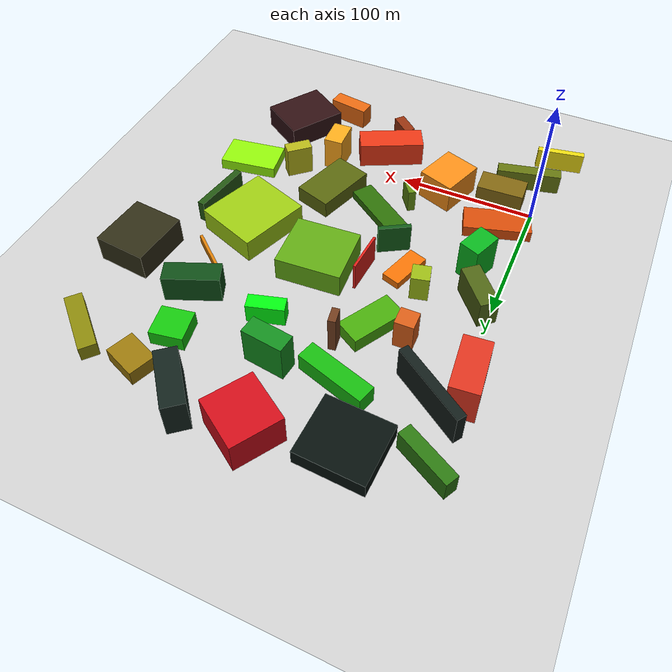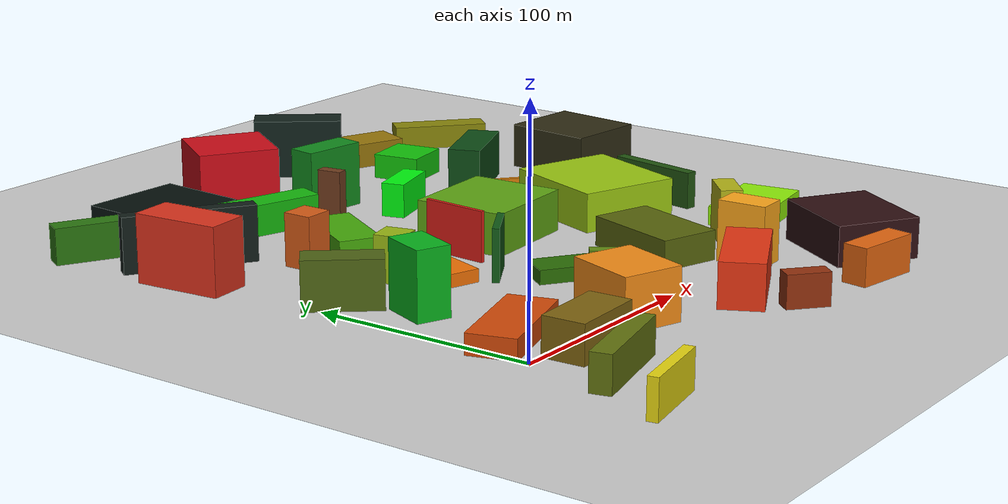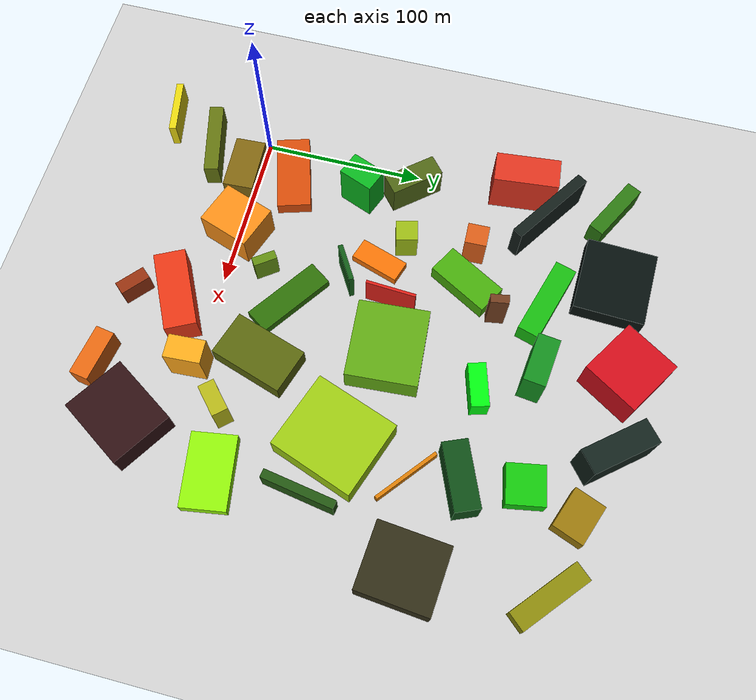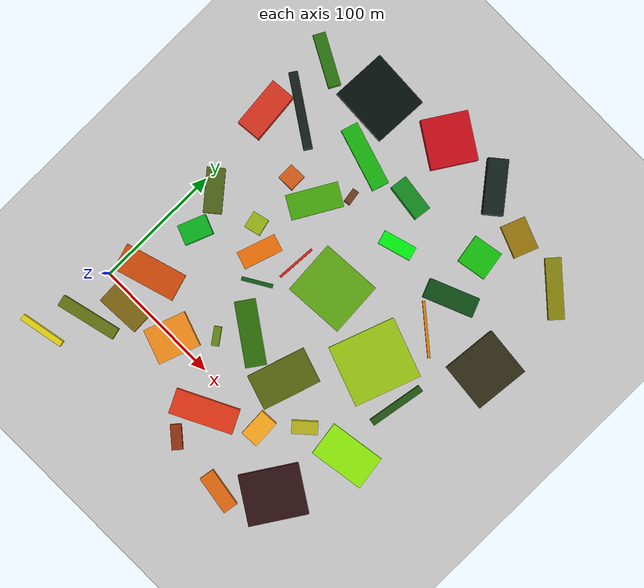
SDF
<sdf version="1.6">
 <world name="default">
  <model name="ground_plane">
   <static>1</static>
   <link name="link">
    <collision name="collision">
     <geometry><plane><normal>0 0 1</normal><size>1090 1090</size></plane></geometry>
     <surface>
      <contact><collide_bitmask>65535</collide_bitmask></contact>
      <friction><ode><mu>100</mu><mu2>50</mu2></ode></friction>
     </surface>
     <max_contacts>100</max_contacts>
    </collision>
    <visual name="visual">
     <cast_shadows>0</cast_shadows>
     <geometry><plane><normal>0 0 1</normal><size>1090 1090</size></plane></geometry>
     <material>
      <script><uri>file://media/materials/scripts/gazebo.material</uri><name>Gazebo/Grey</name></script>
     </material>
    </visual>
   </link>
  </model>
  <model name="box_0">
   <pose>11.0 98.0 10.67856067899134 0.0 0.0 -0.8694971052716423</pose>
   <link name="link">
    <inertial>
     <mass>1</mass>
     <inertia><ixx>1.0</ixx><ixy>0</ixy><ixz>0</ixz><iyy>1.0</iyy><iyz>0</iyz><izz>1.0</izz></inertia>
    </inertial>
    <collision name="collision">
     <geometry><box><size>33.5071474526018 13.437500068040059 21.35712135798268</size></box></geometry>
     <max_contacts>100</max_contacts>
    </collision>
    <visual name="visual">
     <geometry><box><size>33.5071474526018 13.437500068040059 21.35712135798268</size></box></geometry>
     <material>
      <ambient>0.3059676274096351 0.3932885663509397 0.08375341709012817 1</ambient>
      <diffuse>0.3059676274096351 0.3932885663509397 0.08375341709012817 1</diffuse>
     </material>
    </visual>
   </link>
  </model>
  <model name="box_3">
   <pose>200.0 -28.0 9.022767748040945 0.0 0.0 0.9989461405889835</pose>
   <link name="link">
    <inertial>
     <mass>1</mass>
     <inertia><ixx>1.0</ixx><ixy>0</ixy><ixz>0</ixz><iyy>1.0</iyy><iyz>0</iyz><izz>1.0</izz></inertia>
    </inertial>
    <collision name="collision">
     <geometry><box><size>45.36900019797469 38.38082626452342 18.04553549608189</size></box></geometry>
     <max_contacts>100</max_contacts>
    </collision>
    <visual name="visual">
     <geometry><box><size>45.36900019797469 38.38082626452342 18.04553549608189</size></box></geometry>
     <material>
      <ambient>0.18105585911303934 0.06124740286496 0.0707668058669878 1</ambient>
      <diffuse>0.18105585911303934 0.06124740286496 0.0707668058669878 1</diffuse>
     </material>
    </visual>
   </link>
  </model>
  <model name="box_10">
   <pose>218.0 30.0 4.36076915369778 0.0 0.0 1.7217781965595014</pose>
   <link name="link">
    <inertial>
     <mass>1</mass>
     <inertia><ixx>1.0</ixx><ixy>0</ixy><ixz>0</ixz><iyy>1.0</iyy><iyz>0</iyz><izz>1.0</izz></inertia>
    </inertial>
    <collision name="collision">
     <geometry><box><size>26.88339719535763 43.408110691959145 8.72153830739556</size></box></geometry>
     <max_contacts>100</max_contacts>
    </collision>
    <visual name="visual">
     <geometry><box><size>26.88339719535763 43.408110691959145 8.72153830739556</size></box></geometry>
     <material>
      <ambient>0.5631429183391052 0.9368762787943058 0.034202111009394354 1</ambient>
      <diffuse>0.5631429183391052 0.9368762787943058 0.034202111009394354 1</diffuse>
     </material>
    </visual>
   </link>
  </model>
  <model name="box_12">
   <pose>244.0 147.0 10.400552500799233 0.0 0.0 3.0447985492003213</pose>
   <link name="link">
    <inertial>
     <mass>1</mass>
     <inertia><ixx>1.0</ixx><ixy>0</ixy><ixz>0</ixz><iyy>1.0</iyy><iyz>0</iyz><izz>1.0</izz></inertia>
    </inertial>
    <collision name="collision">
     <geometry><box><size>38.614115217144985 42.638338753852224 20.801105001598465</size></box></geometry>
     <max_contacts>100</max_contacts>
    </collision>
    <visual name="visual">
     <geometry><box><size>38.614115217144985 42.638338753852224 20.801105001598465</size></box></geometry>
     <material>
      <ambient>0.18408507084050296 0.17183968187200183 0.08157296079058221 1</ambient>
      <diffuse>0.18408507084050296 0.17183968187200183 0.08157296079058221 1</diffuse>
     </material>
    </visual>
   </link>
  </model>
  <model name="box_16">
   <pose>12.0 -33.0 7.8999495172870144 0.0 0.0 -2.9074084649632392</pose>
   <link name="link">
    <inertial>
     <mass>1</mass>
     <inertia><ixx>1.0</ixx><ixy>0</ixy><ixz>0</ixz><iyy>1.0</iyy><iyz>0</iyz><izz>1.0</izz></inertia>
    </inertial>
    <collision name="collision">
     <geometry><box><size>47.22595043230734 8.998547996909277 15.799899034574029</size></box></geometry>
     <max_contacts>100</max_contacts>
    </collision>
    <visual name="visual">
     <geometry><box><size>47.22595043230734 8.998547996909277 15.799899034574029</size></box></geometry>
     <material>
      <ambient>0.386585925612677 0.4516583894784828 0.06196038837087854 1</ambient>
      <diffuse>0.386585925612677 0.4516583894784828 0.06196038837087854 1</diffuse>
     </material>
    </visual>
   </link>
  </model>
  <model name="box_17">
   <pose>20.0 22.0 4.452574775439398 0.0 0.0 0.2918054289695745</pose>
   <link name="link">
    <inertial>
     <mass>1</mass>
     <inertia><ixx>1.0</ixx><ixy>0</ixy><ixz>0</ixz><iyy>1.0</iyy><iyz>0</iyz><izz>1.0</izz></inertia>
    </inertial>
    <collision name="collision">
     <geometry><box><size>49.000109454054865 21.082333981721092 8.905149550878797</size></box></geometry>
     <max_contacts>100</max_contacts>
    </collision>
    <visual name="visual">
     <geometry><box><size>49.000109454054865 21.082333981721092 8.905149550878797</size></box></geometry>
     <material>
      <ambient>0.8293685395352113 0.29114021774623766 0.034922155101485476 1</ambient>
      <diffuse>0.8293685395352113 0.29114021774623766 0.034922155101485476 1</diffuse>
     </material>
    </visual>
   </link>
  </model>
  <model name="box_20">
   <pose>183.0 93.0 8.946816165260138 0.0 0.0 -0.34660458879755934</pose>
   <link name="link">
    <inertial>
     <mass>1</mass>
     <inertia><ixx>1.0</ixx><ixy>0</ixy><ixz>0</ixz><iyy>1.0</iyy><iyz>0</iyz><izz>1.0</izz></inertia>
    </inertial>
    <collision name="collision">
     <geometry><box><size>47.430815665113364 52.51957210905458 17.893632330520276</size></box></geometry>
     <max_contacts>100</max_contacts>
    </collision>
    <visual name="visual">
     <geometry><box><size>47.430815665113364 52.51957210905458 17.893632330520276</size></box></geometry>
     <material>
      <ambient>0.6064786898915688 0.780767434220349 0.07017110717851088 1</ambient>
      <diffuse>0.6064786898915688 0.780767434220349 0.07017110717851088 1</diffuse>
     </material>
    </visual>
   </link>
  </model>
  <model name="box_21">
   <pose>68.0 145.0 5.506815892541878 0.0 0.0 1.0504982057027636</pose>
   <link name="link">
    <inertial>
     <mass>1</mass>
     <inertia><ixx>1.0</ixx><ixy>0</ixy><ixz>0</ixz><iyy>1.0</iyy><iyz>0</iyz><izz>1.0</izz></inertia>
    </inertial>
    <collision name="collision">
     <geometry><box><size>39.91934967818939 18.945758763937253 11.013631785083756</size></box></geometry>
     <max_contacts>100</max_contacts>
    </collision>
    <visual name="visual">
     <geometry><box><size>39.91934967818939 18.945758763937253 11.013631785083756</size></box></geometry>
     <material>
      <ambient>0.27681154281509324 0.6641535544460366 0.0431907128826814 1</ambient>
      <diffuse>0.27681154281509324 0.6641535544460366 0.0431907128826814 1</diffuse>
     </material>
    </visual>
   </link>
  </model>
  <model name="box_22">
   <pose>106.0 246.0 12.321171566801386 0.0 0.0 -0.5682716648869991</pose>
   <link name="link">
    <inertial>
     <mass>1</mass>
     <inertia><ixx>1.0</ixx><ixy>0</ixy><ixz>0</ixz><iyy>1.0</iyy><iyz>0</iyz><izz>1.0</izz></inertia>
    </inertial>
    <collision name="collision">
     <geometry><box><size>37.347761429379275 35.48738556221239 24.642343133602772</size></box></geometry>
     <max_contacts>100</max_contacts>
    </collision>
    <visual name="visual">
     <geometry><box><size>37.347761429379275 35.48738556221239 24.642343133602772</size></box></geometry>
     <material>
      <ambient>0.8087825948908098 0.04922039290385771 0.09663663973961871 1</ambient>
      <diffuse>0.8087825948908098 0.04922039290385771 0.09663663973961871 1</diffuse>
     </material>
    </visual>
   </link>
  </model>
  <model name="box_29">
   <pose>238.0 225.0 5.6548939288473345 0.0 0.0 2.419468560276357</pose>
   <link name="link">
    <inertial>
     <mass>1</mass>
     <inertia><ixx>1.0</ixx><ixy>0</ixy><ixz>0</ixz><iyy>1.0</iyy><iyz>0</iyz><izz>1.0</izz></inertia>
    </inertial>
    <collision name="collision">
     <geometry><box><size>45.80371317777055 12.001747961715667 11.309787857694669</size></box></geometry>
     <max_contacts>100</max_contacts>
    </collision>
    <visual name="visual">
     <geometry><box><size>45.80371317777055 12.001747961715667 11.309787857694669</size></box></geometry>
     <material>
      <ambient>0.5360395342016109 0.527621868070338 0.04435210924586145 1</ambient>
      <diffuse>0.5360395342016109 0.527621868070338 0.04435210924586145 1</diffuse>
     </material>
    </visual>
   </link>
  </model>
  <model name="box_31">
   <pose>104.0 43.0 3.1533066303083497 0.0 0.0 2.5326309119641586</pose>
   <link name="link">
    <inertial>
     <mass>1</mass>
     <inertia><ixx>1.0</ixx><ixy>0</ixy><ixz>0</ixz><iyy>1.0</iyy><iyz>0</iyz><izz>1.0</izz></inertia>
    </inertial>
    <collision name="collision">
     <geometry><box><size>49.758344329735195 16.0046455354806 6.306613260616699</size></box></geometry>
     <max_contacts>100</max_contacts>
    </collision>
    <visual name="visual">
     <geometry><box><size>49.758344329735195 16.0046455354806 6.306613260616699</size></box></geometry>
     <material>
      <ambient>0.17324673085959463 0.4304662909968965 0.024731816708300783 1</ambient>
      <diffuse>0.17324673085959463 0.4304662909968965 0.024731816708300783 1</diffuse>
     </material>
    </visual>
   </link>
  </model>
  <model name="box_33">
   <pose>22.0 68.0 14.940747189062463 0.0 0.0 2.7642369392400856</pose>
   <link name="link">
    <inertial>
     <mass>1</mass>
     <inertia><ixx>1.0</ixx><ixy>0</ixy><ixz>0</ixz><iyy>1.0</iyy><iyz>0</iyz><izz>1.0</izz></inertia>
    </inertial>
    <collision name="collision">
     <geometry><box><size>15.324194474235277 22.052505184348746 29.881494378124927</size></box></geometry>
     <max_contacts>100</max_contacts>
    </collision>
    <visual name="visual">
     <geometry><box><size>15.324194474235277 22.052505184348746 29.881494378124927</size></box></geometry>
     <material>
      <ambient>0.03579773283249821 0.7024033259504372 0.11718233089460756 1</ambient>
      <diffuse>0.03579773283249821 0.7024033259504372 0.11718233089460756 1</diffuse>
     </material>
    </visual>
   </link>
  </model>
  <model name="box_42">
   <pose>14.0 184.0 12.412598644548913 0.0 0.0 2.5531505267635</pose>
   <link name="link">
    <inertial>
     <mass>1</mass>
     <inertia><ixx>1.0</ixx><ixy>0</ixy><ixz>0</ixz><iyy>1.0</iyy><iyz>0</iyz><izz>1.0</izz></inertia>
    </inertial>
    <collision name="collision">
     <geometry><box><size>57.2920520556023 6.859954326275175 24.825197289097826</size></box></geometry>
     <max_contacts>100</max_contacts>
    </collision>
    <visual name="visual">
     <geometry><box><size>57.2920520556023 6.859954326275175 24.825197289097826</size></box></geometry>
     <material>
      <ambient>0.07058239078120265 0.1146007214804432 0.09735371485920716 1</ambient>
      <diffuse>0.07058239078120265 0.1146007214804432 0.09735371485920716 1</diffuse>
     </material>
    </visual>
   </link>
  </model>
  <model name="box_48">
   <pose>120.0 -49.0 7.240691237536761 0.0 0.0 -0.7103731831897215</pose>
   <link name="link">
    <inertial>
     <mass>1</mass>
     <inertia><ixx>1.0</ixx><ixy>0</ixy><ixz>0</ixz><iyy>1.0</iyy><iyz>0</iyz><izz>1.0</izz></inertia>
    </inertial>
    <collision name="collision">
     <geometry><box><size>18.85390716043674 8.200221011359595 14.481382475073522</size></box></geometry>
     <max_contacts>100</max_contacts>
    </collision>
    <visual name="visual">
     <geometry><box><size>18.85390716043674 8.200221011359595 14.481382475073522</size></box></geometry>
     <material>
      <ambient>0.5756867890137396 0.18945015781231445 0.05678973519636675 1</ambient>
      <diffuse>0.5756867890137396 0.18945015781231445 0.05678973519636675 1</diffuse>
     </material>
    </visual>
   </link>
  </model>
  <model name="box_54">
   <pose>193.0 233.0 5.7998966686686755 0.0 0.0 -1.9395560428594647</pose>
   <link name="link">
    <inertial>
     <mass>1</mass>
     <inertia><ixx>1.0</ixx><ixy>0</ixy><ixz>0</ixz><iyy>1.0</iyy><iyz>0</iyz><izz>1.0</izz></inertia>
    </inertial>
    <collision name="collision">
     <geometry><box><size>19.200888196373857 25.301782714017442 11.599793337337351</size></box></geometry>
     <max_contacts>100</max_contacts>
    </collision>
    <visual name="visual">
     <geometry><box><size>19.200888196373857 25.301782714017442 11.599793337337351</size></box></geometry>
     <material>
      <ambient>0.5960275623261782 0.4654695609762862 0.045489385636617065 1</ambient>
      <diffuse>0.5960275623261782 0.4654695609762862 0.045489385636617065 1</diffuse>
     </material>
    </visual>
   </link>
  </model>
  <model name="box_55">
   <pose>123.0 109.0 9.383912468043714 0.0 0.0 0.06575288888933324</pose>
   <link name="link">
    <inertial>
     <mass>1</mass>
     <inertia><ixx>1.0</ixx><ixy>0</ixy><ixz>0</ixz><iyy>1.0</iyy><iyz>0</iyz><izz>1.0</izz></inertia>
    </inertial>
    <collision name="collision">
     <geometry><box><size>47.223947586904224 42.66392834239757 18.76782493608743</size></box></geometry>
     <max_contacts>100</max_contacts>
    </collision>
    <visual name="visual">
     <geometry><box><size>47.223947586904224 42.66392834239757 18.76782493608743</size></box></geometry>
     <material>
      <ambient>0.3735187204133277 0.6535196936906211 0.07359931347485266 1</ambient>
      <diffuse>0.3735187204133277 0.6535196936906211 0.07359931347485266 1</diffuse>
     </material>
    </visual>
   </link>
  </model>
  <model name="box_58">
   <pose>44.0 145.0 11.76288372965097 0.0 0.0 -1.5490794688722906</pose>
   <link name="link">
    <inertial>
     <mass>1</mass>
     <inertia><ixx>1.0</ixx><ixy>0</ixy><ixz>0</ixz><iyy>1.0</iyy><iyz>0</iyz><izz>1.0</izz></inertia>
    </inertial>
    <collision name="collision">
     <geometry><box><size>13.233263653863634 13.253963283478683 23.52576745930194</size></box></geometry>
     <max_contacts>100</max_contacts>
    </collision>
    <visual name="visual">
     <geometry><box><size>13.233263653863634 13.253963283478683 23.52576745930194</size></box></geometry>
     <material>
      <ambient>0.8406580615315964 0.3596186326085842 0.09225791160510564 1</ambient>
      <diffuse>0.8406580615315964 0.3596186326085842 0.09225791160510564 1</diffuse>
     </material>
    </visual>
   </link>
  </model>
  <model name="box_65">
   <pose>-5.0 -64.0 8.321705411121883 0.0 0.0 -1.3865575120020939</pose>
   <link name="link">
    <inertial>
     <mass>1</mass>
     <inertia><ixx>1.0</ixx><ixy>0</ixy><ixz>0</ixz><iyy>1.0</iyy><iyz>0</iyz><izz>1.0</izz></inertia>
    </inertial>
    <collision name="collision">
     <geometry><box><size>4.505801835102486 34.9868345589145 16.643410822243766</size></box></geometry>
     <max_contacts>100</max_contacts>
    </collision>
    <visual name="visual">
     <geometry><box><size>4.505801835102486 34.9868345589145 16.643410822243766</size></box></geometry>
     <material>
      <ambient>0.9027329967068933 0.8367197437175415 0.06526827773428928 1</ambient>
      <diffuse>0.9027329967068933 0.8367197437175415 0.06526827773428928 1</diffuse>
     </material>
    </visual>
   </link>
  </model>
  <model name="box_67">
   <pose>71.0 194.0 7.042951942143871 0.0 0.0 -1.8695652194114296</pose>
   <link name="link">
    <inertial>
     <mass>1</mass>
     <inertia><ixx>1.0</ixx><ixy>0</ixy><ixz>0</ixz><iyy>1.0</iyy><iyz>0</iyz><izz>1.0</izz></inertia>
    </inertial>
    <collision name="collision">
     <geometry><box><size>13.306921387319635 49.95106908758192 14.085903884287742</size></box></geometry>
     <max_contacts>100</max_contacts>
    </collision>
    <visual name="visual">
     <geometry><box><size>13.306921387319635 49.95106908758192 14.085903884287742</size></box></geometry>
     <material>
      <ambient>0.08733158801579832 0.7195026611824833 0.05523883876191271 1</ambient>
      <diffuse>0.08733158801579832 0.7195026611824833 0.05523883876191271 1</diffuse>
     </material>
    </visual>
   </link>
  </model>
  <model name="box_68">
   <pose>-4.0 166.0 14.906343968450011 0.0 0.0 0.09348041894418303</pose>
   <link name="link">
    <inertial>
     <mass>1</mass>
     <inertia><ixx>1.0</ixx><ixy>0</ixy><ixz>0</ixz><iyy>1.0</iyy><iyz>0</iyz><izz>1.0</izz></inertia>
    </inertial>
    <collision name="collision">
     <geometry><box><size>19.299252112413622 39.650661033997004 29.812687936900023</size></box></geometry>
     <max_contacts>100</max_contacts>
    </collision>
    <visual name="visual">
     <geometry><box><size>19.299252112413622 39.650661033997004 29.812687936900023</size></box></geometry>
     <material>
      <ambient>0.8606963046452468 0.19890697200719787 0.11691250171333342 1</ambient>
      <diffuse>0.8606963046452468 0.19890697200719787 0.11691250171333342 1</diffuse>
     </material>
    </visual>
   </link>
  </model>
  <model name="box_70">
   <pose>85.0 166.0 14.615826993485872 0.0 0.0 1.730482301686717</pose>
   <link name="link">
    <inertial>
     <mass>1</mass>
     <inertia><ixx>1.0</ixx><ixy>0</ixy><ixz>0</ixz><iyy>1.0</iyy><iyz>0</iyz><izz>1.0</izz></inertia>
    </inertial>
    <collision name="collision">
     <geometry><box><size>11.043469622448155 5.204269934756496 29.231653986971743</size></box></geometry>
     <max_contacts>100</max_contacts>
    </collision>
    <visual name="visual">
     <geometry><box><size>11.043469622448155 5.204269934756496 29.231653986971743</size></box></geometry>
     <material>
      <ambient>0.4377335516035049 0.23357343164586764 0.11463393720381075 1</ambient>
      <diffuse>0.4377335516035049 0.23357343164586764 0.11463393720381075 1</diffuse>
     </material>
    </visual>
   </link>
  </model>
  <model name="box_71">
   <pose>48.0 232.0 5.946318855430198 0.0 0.0 -1.6158563315574723</pose>
   <link name="link">
    <inertial>
     <mass>1</mass>
     <inertia><ixx>1.0</ixx><ixy>0</ixy><ixz>0</ixz><iyy>1.0</iyy><iyz>0</iyz><izz>1.0</izz></inertia>
    </inertial>
    <collision name="collision">
     <geometry><box><size>42.83450906743539 47.06624918438321 11.892637710860395</size></box></geometry>
     <max_contacts>100</max_contacts>
    </collision>
    <visual name="visual">
     <geometry><box><size>42.83450906743539 47.06624918438321 11.892637710860395</size></box></geometry>
     <material>
      <ambient>0.01882411751123325 0.05830483047775337 0.046637794944550566 1</ambient>
      <diffuse>0.01882411751123325 0.05830483047775337 0.046637794944550566 1</diffuse>
     </material>
    </visual>
   </link>
  </model>
  <model name="box_72">
   <pose>145.0 37.0 6.613360968849233 0.0 0.0 -0.31305718043218267</pose>
   <link name="link">
    <inertial>
     <mass>1</mass>
     <inertia><ixx>1.0</ixx><ixy>0</ixy><ixz>0</ixz><iyy>1.0</iyy><iyz>0</iyz><izz>1.0</izz></inertia>
    </inertial>
    <collision name="collision">
     <geometry><box><size>27.772304678779093 46.08052514308038 13.226721937698466</size></box></geometry>
     <max_contacts>100</max_contacts>
    </collision>
    <visual name="visual">
     <geometry><box><size>27.772304678779093 46.08052514308038 13.226721937698466</size></box></geometry>
     <material>
      <ambient>0.3449038805265231 0.39460369117037364 0.05186949779489595 1</ambient>
      <diffuse>0.3449038805265231 0.39460369117037364 0.05186949779489595 1</diffuse>
     </material>
    </visual>
   </link>
  </model>
  <model name="box_77">
   <pose>134.0 165.0 7.748747172432944 0.0 0.0 -1.2893137561759742</pose>
   <link name="link">
    <inertial>
     <mass>1</mass>
     <inertia><ixx>1.0</ixx><ixy>0</ixy><ixz>0</ixz><iyy>1.0</iyy><iyz>0</iyz><izz>1.0</izz></inertia>
    </inertial>
    <collision name="collision">
     <geometry><box><size>10.647248718028262 26.276599516183587 15.497494344865888</size></box></geometry>
     <max_contacts>100</max_contacts>
    </collision>
    <visual name="visual">
     <geometry><box><size>10.647248718028262 26.276599516183587 15.497494344865888</size></box></geometry>
     <material>
      <ambient>0.003701190147638367 0.9727087592541899 0.060774487626925056 1</ambient>
      <diffuse>0.003701190147638367 0.9727087592541899 0.060774487626925056 1</diffuse>
     </material>
    </visual>
   </link>
  </model>
  <model name="box_82">
   <pose>116.0 196.0 14.636361803036499 0.0 0.0 -1.696495516904067</pose>
   <link name="link">
    <inertial>
     <mass>1</mass>
     <inertia><ixx>1.0</ixx><ixy>0</ixy><ixz>0</ixz><iyy>1.0</iyy><iyz>0</iyz><izz>1.0</izz></inertia>
    </inertial>
    <collision name="collision">
     <geometry><box><size>13.206414423738542 29.493934000783625 29.272723606072997</size></box></geometry>
     <max_contacts>100</max_contacts>
    </collision>
    <visual name="visual">
     <geometry><box><size>13.206414423738542 29.493934000783625 29.272723606072997</size></box></geometry>
     <material>
      <ambient>0.07200331095145396 0.547447779785224 0.11479499453361959 1</ambient>
      <diffuse>0.07200331095145396 0.547447779785224 0.11479499453361959 1</diffuse>
     </material>
    </visual>
   </link>
  </model>
  <model name="box_85">
   <pose>121.0 -21.0 9.875234954149928 0.0 0.0 -1.1068710950343628</pose>
   <link name="link">
    <inertial>
     <mass>1</mass>
     <inertia><ixx>1.0</ixx><ixy>0</ixy><ixz>0</ixz><iyy>1.0</iyy><iyz>0</iyz><izz>1.0</izz></inertia>
    </inertial>
    <collision name="collision">
     <geometry><box><size>19.107313094750424 49.148852692676755 19.750469908299856</size></box></geometry>
     <max_contacts>100</max_contacts>
    </collision>
    <visual name="visual">
     <geometry><box><size>19.107313094750424 49.148852692676755 19.750469908299856</size></box></geometry>
     <material>
      <ambient>0.8981207591746908 0.21006147373014938 0.07745282316980336 1</ambient>
      <diffuse>0.8981207591746908 0.21006147373014938 0.07745282316980336 1</diffuse>
     </material>
    </visual>
   </link>
  </model>
  <model name="box_86">
   <pose>189.0 166.0 10.640653041039752 0.0 0.0 -2.748518584055905</pose>
   <link name="link">
    <inertial>
     <mass>1</mass>
     <inertia><ixx>1.0</ixx><ixy>0</ixy><ixz>0</ixz><iyy>1.0</iyy><iyz>0</iyz><izz>1.0</izz></inertia>
    </inertial>
    <collision name="collision">
     <geometry><box><size>39.26988850810223 15.0775589127032 21.281306082079503</size></box></geometry>
     <max_contacts>100</max_contacts>
    </collision>
    <visual name="visual">
     <geometry><box><size>39.26988850810223 15.0775589127032 21.281306082079503</size></box></geometry>
     <material>
      <ambient>0.04971245361973187 0.29778441268325384 0.08345610228266472 1</ambient>
      <diffuse>0.04971245361973187 0.29778441268325384 0.08345610228266472 1</diffuse>
     </material>
    </visual>
   </link>
  </model>
  <model name="box_87">
   <pose>154.0 246.0 13.764790657190474 0.0 0.0 0.6856298399200135</pose>
   <link name="link">
    <inertial>
     <mass>1</mass>
     <inertia><ixx>1.0</ixx><ixy>0</ixy><ixz>0</ixz><iyy>1.0</iyy><iyz>0</iyz><izz>1.0</izz></inertia>
    </inertial>
    <collision name="collision">
     <geometry><box><size>15.228272862707218 41.49792869561371 27.52958131438095</size></box></geometry>
     <max_contacts>100</max_contacts>
    </collision>
    <visual name="visual">
     <geometry><box><size>15.228272862707218 41.49792869561371 27.52958131438095</size></box></geometry>
     <material>
      <ambient>0.06905149785271802 0.13032082390327848 0.10795914240933706 1</ambient>
      <diffuse>0.06905149785271802 0.13032082390327848 0.10795914240933706 1</diffuse>
     </material>
    </visual>
   </link>
  </model>
  <model name="box_89">
   <pose>66.0 0.0 11.55570936208714 0.0 0.0 2.8011250503636047</pose>
   <link name="link">
    <inertial>
     <mass>1</mass>
     <inertia><ixx>1.0</ixx><ixy>0</ixy><ixz>0</ixz><iyy>1.0</iyy><iyz>0</iyz><izz>1.0</izz></inertia>
    </inertial>
    <collision name="collision">
     <geometry><box><size>27.538913239885254 32.7847513779286 23.11141872417428</size></box></geometry>
     <max_contacts>100</max_contacts>
    </collision>
    <visual name="visual">
     <geometry><box><size>27.538913239885254 32.7847513779286 23.11141872417428</size></box></geometry>
     <material>
      <ambient>0.9589306259978781 0.5508855891769465 0.09063301460460502 1</ambient>
      <diffuse>0.9589306259978781 0.5508855891769465 0.09063301460460502 1</diffuse>
     </material>
    </visual>
   </link>
  </model>
  <model name="box_90">
   <pose>1.0 224.0 8.081688344002872 0.0 0.0 2.6503772326636885</pose>
   <link name="link">
    <inertial>
     <mass>1</mass>
     <inertia><ixx>1.0</ixx><ixy>0</ixy><ixz>0</ixz><iyy>1.0</iyy><iyz>0</iyz><izz>1.0</izz></inertia>
    </inertial>
    <collision name="collision">
     <geometry><box><size>40.30652474469334 9.53727784699203 16.163376688005744</size></box></geometry>
     <max_contacts>100</max_contacts>
    </collision>
    <visual name="visual">
     <geometry><box><size>40.30652474469334 9.53727784699203 16.163376688005744</size></box></geometry>
     <material>
      <ambient>0.16870913950123256 0.46432973566247593 0.06338579093335586 1</ambient>
      <diffuse>0.16870913950123256 0.46432973566247593 0.06338579093335586 1</diffuse>
     </material>
    </visual>
   </link>
  </model>
  <model name="box_91">
   <pose>91.0 103.0 11.296147235210183 0.0 0.0 -1.6337449572449578</pose>
   <link name="link">
    <inertial>
     <mass>1</mass>
     <inertia><ixx>1.0</ixx><ixy>0</ixy><ixz>0</ixz><iyy>1.0</iyy><iyz>0</iyz><izz>1.0</izz></inertia>
    </inertial>
    <collision name="collision">
     <geometry><box><size>30.596055142566193 1.7489963206601762 22.592294470420367</size></box></geometry>
     <max_contacts>100</max_contacts>
    </collision>
    <visual name="visual">
     <geometry><box><size>30.596055142566193 1.7489963206601762 22.592294470420367</size></box></geometry>
     <material>
      <ambient>0.855017931999269 0.11970172075090169 0.08859723321733477 1</ambient>
      <diffuse>0.855017931999269 0.11970172075090169 0.08859723321733477 1</diffuse>
     </material>
    </visual>
   </link>
  </model>
  <model name="box_92">
   <pose>170.0 -55.0 8.331041992335482 0.0 0.0 2.977353078917468</pose>
   <link name="link">
    <inertial>
     <mass>1</mass>
     <inertia><ixx>1.0</ixx><ixy>0</ixy><ixz>0</ixz><iyy>1.0</iyy><iyz>0</iyz><izz>1.0</izz></inertia>
    </inertial>
    <collision name="collision">
     <geometry><box><size>30.8417026798595 11.57294127745068 16.662083984670964</size></box></geometry>
     <max_contacts>100</max_contacts>
    </collision>
    <visual name="visual">
     <geometry><box><size>30.8417026798595 11.57294127745068 16.662083984670964</size></box></geometry>
     <material>
      <ambient>0.8923675117743 0.40329841996891813 0.06534150582223908 1</ambient>
      <diffuse>0.8923675117743 0.40329841996891813 0.06534150582223908 1</diffuse>
     </material>
    </visual>
   </link>
  </model>
  <model name="box_93">
   <pose>50.0 103.0 10.211878661392834 0.0 0.0 -2.9017000371816764</pose>
   <link name="link">
    <inertial>
     <mass>1</mass>
     <inertia><ixx>1.0</ixx><ixy>0</ixy><ixz>0</ixz><iyy>1.0</iyy><iyz>0</iyz><izz>1.0</izz></inertia>
    </inertial>
    <collision name="collision">
     <geometry><box><size>12.845379869943088 13.122478383305879 20.42375732278567</size></box></geometry>
     <max_contacts>100</max_contacts>
    </collision>
    <visual name="visual">
     <geometry><box><size>12.845379869943088 13.122478383305879 20.42375732278567</size></box></geometry>
     <material>
      <ambient>0.6001191306321492 0.7191266798240048 0.0800931659717085 1</ambient>
      <diffuse>0.6001191306321492 0.7191266798240048 0.0800931659717085 1</diffuse>
     </material>
    </visual>
   </link>
  </model>
  <model name="box_101">
   <pose>66.0 90.0 2.905444253893114 0.0 0.0 1.2509716935132567</pose>
   <link name="link">
    <inertial>
     <mass>1</mass>
     <inertia><ixx>1.0</ixx><ixy>0</ixy><ixz>0</ixz><iyy>1.0</iyy><iyz>0</iyz><izz>1.0</izz></inertia>
    </inertial>
    <collision name="collision">
     <geometry><box><size>30.704648129416725 13.666288862488152 5.810888507786228</size></box></geometry>
     <max_contacts>100</max_contacts>
    </collision>
    <visual name="visual">
     <geometry><box><size>30.704648129416725 13.666288862488152 5.810888507786228</size></box></geometry>
     <material>
      <ambient>0.9435844056416095 0.44537523030450143 0.022787798069749912 1</ambient>
      <diffuse>0.9435844056416095 0.44537523030450143 0.022787798069749912 1</diffuse>
     </material>
    </visual>
   </link>
  </model>
  <model name="box_103">
   <pose>26.0 -8.0 8.350210729457519 0.0 0.0 -3.0960424068405046</pose>
   <link name="link">
    <inertial>
     <mass>1</mass>
     <inertia><ixx>1.0</ixx><ixy>0</ixy><ixz>0</ixz><iyy>1.0</iyy><iyz>0</iyz><izz>1.0</izz></inertia>
    </inertial>
    <collision name="collision">
     <geometry><box><size>34.29043396208377 18.864905767433104 16.700421458915038</size></box></geometry>
     <max_contacts>100</max_contacts>
    </collision>
    <visual name="visual">
     <geometry><box><size>34.29043396208377 18.864905767433104 16.700421458915038</size></box></geometry>
     <material>
      <ambient>0.49728660667330493 0.3935076234046926 0.06549184885849034 1</ambient>
      <diffuse>0.49728660667330493 0.3935076234046926 0.06549184885849034 1</diffuse>
     </material>
    </visual>
   </link>
  </model>
  <model name="box_105">
   <pose>88.0 24.0 9.032437725292166 0.0 0.0 -2.515540087471196</pose>
   <link name="link">
    <inertial>
     <mass>1</mass>
     <inertia><ixx>1.0</ixx><ixy>0</ixy><ixz>0</ixz><iyy>1.0</iyy><iyz>0</iyz><izz>1.0</izz></inertia>
    </inertial>
    <collision name="collision">
     <geometry><box><size>5.596523616378089 14.51750342812857 18.06487545058433</size></box></geometry>
     <max_contacts>100</max_contacts>
    </collision>
    <visual name="visual">
     <geometry><box><size>5.596523616378089 14.51750342812857 18.06487545058433</size></box></geometry>
     <material>
      <ambient>0.3789961716753004 0.5447863466730695 0.0708426488258209 1</ambient>
      <diffuse>0.3789961716753004 0.5447863466730695 0.0708426488258209 1</diffuse>
     </material>
    </visual>
   </link>
  </model>
  <model name="box_107">
   <pose>183.0 202.0 5.76945337618394 0.0 0.0 1.744145790280461</pose>
   <link name="link">
    <inertial>
     <mass>1</mass>
     <inertia><ixx>1.0</ixx><ixy>0</ixy><ixz>0</ixz><iyy>1.0</iyy><iyz>0</iyz><izz>1.0</izz></inertia>
    </inertial>
    <collision name="collision">
     <geometry><box><size>22.678052447792197 23.427389052115892 11.53890675236788</size></box></geometry>
     <max_contacts>100</max_contacts>
    </collision>
    <visual name="visual">
     <geometry><box><size>22.678052447792197 23.427389052115892 11.53890675236788</size></box></geometry>
     <material>
      <ambient>0.07560170047834691 0.7673772434583196 0.04525061471516816 1</ambient>
      <diffuse>0.07560170047834691 0.7673772434583196 0.04525061471516816 1</diffuse>
     </material>
    </visual>
   </link>
  </model>
  <model name="box_108">
   <pose>193.0 137.0 3.4969832218606256 0.0 0.0 0.8832813295245387</pose>
   <link name="link">
    <inertial>
     <mass>1</mass>
     <inertia><ixx>1.0</ixx><ixy>0</ixy><ixz>0</ixz><iyy>1.0</iyy><iyz>0</iyz><izz>1.0</izz></inertia>
    </inertial>
    <collision name="collision">
     <geometry><box><size>2.1231732676101993 42.44953548340422 6.993966443721251</size></box></geometry>
     <max_contacts>100</max_contacts>
    </collision>
    <visual name="visual">
     <geometry><box><size>2.1231732676101993 42.44953548340422 6.993966443721251</size></box></geometry>
     <material>
      <ambient>0.8493973223366417 0.4866347300614887 0.02742731938714216 1</ambient>
      <diffuse>0.8493973223366417 0.4866347300614887 0.02742731938714216 1</diffuse>
     </material>
    </visual>
   </link>
  </model>
  <model name="box_110">
   <pose>217.0 82.0 8.450654886772494 0.0 0.0 -1.7365797965750276</pose>
   <link name="link">
    <inertial>
     <mass>1</mass>
     <inertia><ixx>1.0</ixx><ixy>0</ixy><ixz>0</ixz><iyy>1.0</iyy><iyz>0</iyz><izz>1.0</izz></inertia>
    </inertial>
    <collision name="collision">
     <geometry><box><size>43.80243094894455 5.234974625490452 16.901309773544988</size></box></geometry>
     <max_contacts>100</max_contacts>
    </collision>
    <visual name="visual">
     <geometry><box><size>43.80243094894455 5.234974625490452 16.901309773544988</size></box></geometry>
     <material>
      <ambient>0.1320776437027289 0.33277313690420296 0.06627964617076466 1</ambient>
      <diffuse>0.1320776437027289 0.33277313690420296 0.06627964617076466 1</diffuse>
     </material>
    </visual>
   </link>
  </model>
  <model name="box_114">
   <pose>158.0 -1.0 13.420993537075626 0.0 0.0 0.05201420889058252</pose>
   <link name="link">
    <inertial>
     <mass>1</mass>
     <inertia><ixx>1.0</ixx><ixy>0</ixy><ixz>0</ixz><iyy>1.0</iyy><iyz>0</iyz><izz>1.0</izz></inertia>
    </inertial>
    <collision name="collision">
     <geometry><box><size>14.08079686882467 21.849671050695555 26.841987074151252</size></box></geometry>
     <max_contacts>100</max_contacts>
    </collision>
    <visual name="visual">
     <geometry><box><size>14.08079686882467 21.849671050695555 26.841987074151252</size></box></geometry>
     <material>
      <ambient>0.9990106853455332 0.6590576667108663 0.10526269440843629 1</ambient>
      <diffuse>0.9990106853455332 0.6590576667108663 0.10526269440843629 1</diffuse>
     </material>
    </visual>
   </link>
  </model>
  <model name="box_116">
   <pose>181.0 23.0 12.206734623988917 0.0 0.0 2.3071845988877477</pose>
   <link name="link">
    <inertial>
     <mass>1</mass>
     <inertia><ixx>1.0</ixx><ixy>0</ixy><ixz>0</ixz><iyy>1.0</iyy><iyz>0</iyz><izz>1.0</izz></inertia>
    </inertial>
    <collision name="collision">
     <geometry><box><size>9.642018356573034 19.484114435151017 24.413469247977833</size></box></geometry>
     <max_contacts>100</max_contacts>
    </collision>
    <visual name="visual">
     <geometry><box><size>9.642018356573034 19.484114435151017 24.413469247977833</size></box></geometry>
     <material>
      <ambient>0.7065004666610188 0.704520951323966 0.09573909509010915 1</ambient>
      <diffuse>0.7065004666610188 0.704520951323966 0.09573909509010915 1</diffuse>
     </material>
    </visual>
   </link>
  </model>
  <model name="box_119">
   <pose>81.0 73.0 11.571382635054452 0.0 0.0 0.5390874910646594</pose>
   <link name="link">
    <inertial>
     <mass>1</mass>
     <inertia><ixx>1.0</ixx><ixy>0</ixy><ixz>0</ixz><iyy>1.0</iyy><iyz>0</iyz><izz>1.0</izz></inertia>
    </inertial>
    <collision name="collision">
     <geometry><box><size>23.587139875781283 3.0182421606817376 23.142765270108903</size></box></geometry>
     <max_contacts>100</max_contacts>
    </collision>
    <visual name="visual">
     <geometry><box><size>23.587139875781283 3.0182421606817376 23.142765270108903</size></box></geometry>
     <material>
      <ambient>0.06752938162292876 0.3525177543481033 0.09075594223572118 1</ambient>
      <diffuse>0.06752938162292876 0.3525177543481033 0.09075594223572118 1</diffuse>
     </material>
    </visual>
   </link>
  </model>
 </world>
</sdf>
